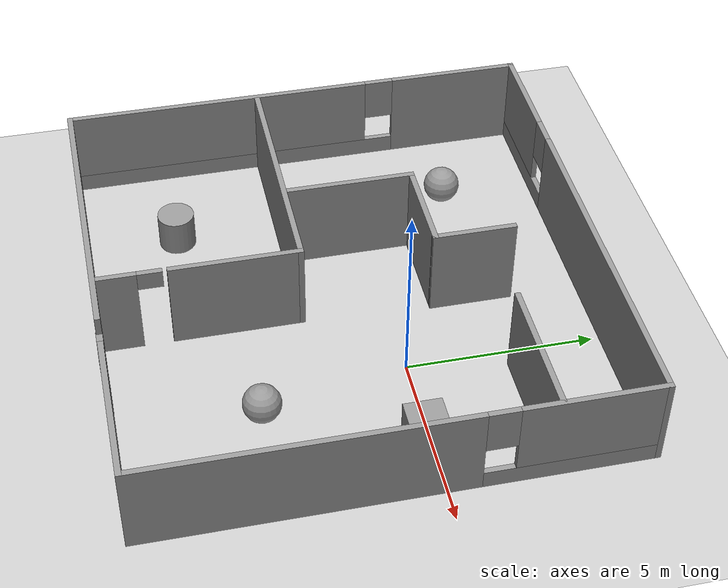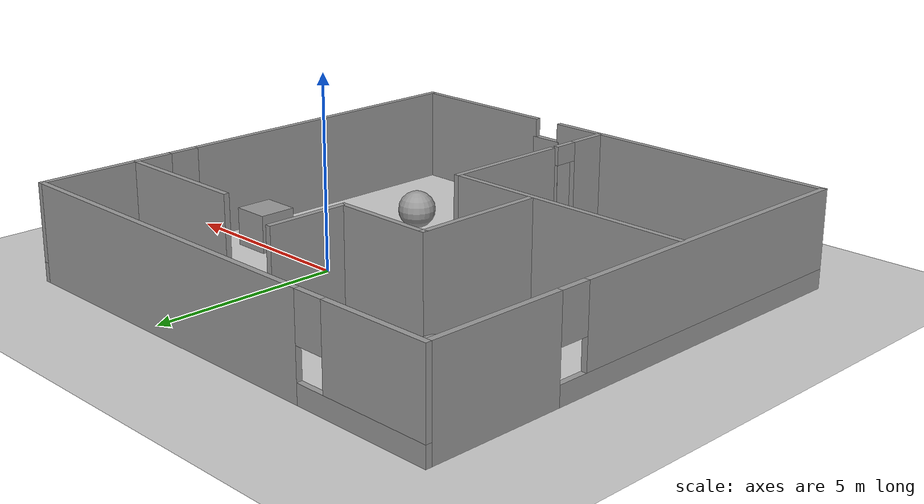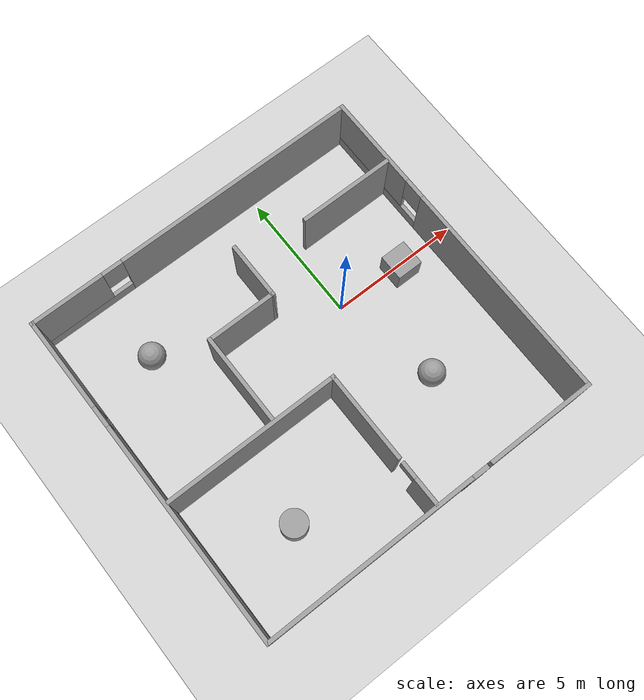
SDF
<sdf version="1.7">
 <world name="default">
  <light name="sun" type="directional">
   <pose>0 0 10 0 -0 0</pose>
   <diffuse>0.8 0.8 0.8 1</diffuse>
   <specular>0.2 0.2 0.2 1</specular>
   <attenuation>
    <range>1000</range>
    <constant>0.9</constant>
    <linear>0.01</linear>
    <quadratic>0.001</quadratic>
   </attenuation>
   <direction>-0.5 0.1 -0.9</direction>
   <spot><inner_angle>0</inner_angle><outer_angle>0</outer_angle><falloff>0</falloff></spot>
  </light>
  <model name="ground_plane">
   <static>1</static>
   <link name="link">
    <collision name="collision">
     <geometry><plane><normal>0 0 1</normal><size>100 100</size></plane></geometry>
     <surface>
      <contact><collide_bitmask>65535</collide_bitmask></contact>
      <friction><ode><mu>100</mu><mu2>50</mu2></ode></friction>
     </surface>
    </collision>
    <visual name="visual">
     <cast_shadows>0</cast_shadows>
     <geometry><plane><normal>0 0 1</normal><size>100 100</size></plane></geometry>
     <material>
      <script><uri>file://media/materials/scripts/gazebo.material</uri><name>Gazebo/Grey</name></script>
     </material>
    </visual>
   </link>
  </model>
  <gravity>0 0 -9.8</gravity>
  <magnetic_field>6e-06 2.3e-05 -4.2e-05</magnetic_field>
  <atmosphere type="adiabatic"/>
  <physics type="ode">
   <max_step_size>0.001</max_step_size>
   <real_time_factor>1</real_time_factor>
   <real_time_update_rate>1000</real_time_update_rate>
  </physics>
  <scene><ambient>0.4 0.4 0.4 1</ambient><background>0.7 0.7 0.7 1</background><shadows>1</shadows></scene>
  <spherical_coordinates>
   <surface_model>EARTH_WGS84</surface_model>
   <latitude_deg>0</latitude_deg>
   <longitude_deg>0</longitude_deg>
   <elevation>0</elevation>
   <heading_deg>0</heading_deg>
  </spherical_coordinates>
  <model name="simple_home">
   <pose>-2.42721 -1.16385 0 0 -0 0</pose>
   <link name="Door_0">
    <collision name="Door_0_Collision">
     <geometry><box><size>0.9 0.17 2</size></box></geometry>
     <pose>0 0 1 0 -0 0</pose>
    </collision>
    <visual name="Door_0_Visual">
     <pose>0 0 1 0 -0 0</pose>
     <geometry><box><size>0.9 0.17 2</size></box></geometry>
     <material>
      <script><uri>file://media/materials/scripts/gazebo.material</uri><name>Gazebo/Grey</name></script>
     </material>
    </visual>
    <pose>2.01601 -6.43038 0 0 -0 0</pose>
   </link>
   <link name="Wall_0">
    <collision name="Wall_0_Collision">
     <geometry><box><size>4.25 0.15 2.5</size></box></geometry>
     <pose>0 0 1.25 0 -0 0</pose>
    </collision>
    <visual name="Wall_0_Visual">
     <pose>0 0 1.25 0 -0 0</pose>
     <geometry><box><size>4.25 0.15 2.5</size></box></geometry>
     <material>
      <script><uri>file://media/materials/scripts/gazebo.material</uri><name>Gazebo/Grey</name></script>
      <ambient>1 1 1 1</ambient>
     </material>
     <meta><layer>0</layer></meta>
    </visual>
    <pose>4.5 -6.425 0 0 -0 0</pose>
   </link>
   <link name="Wall_10">
    <collision name="Wall_10_Collision">
     <geometry><box><size>3.5 0.15 2.5</size></box></geometry>
     <pose>0 0 1.25 0 -0 0</pose>
    </collision>
    <visual name="Wall_10_Visual">
     <pose>0 0 1.25 0 -0 0</pose>
     <geometry><box><size>3.5 0.15 2.5</size></box></geometry>
     <material>
      <script><uri>file://media/materials/scripts/gazebo.material</uri><name>Gazebo/Grey</name></script>
      <ambient>1 1 1 1</ambient>
     </material>
     <meta><layer>0</layer></meta>
    </visual>
    <pose>0.173196 -2.79346 0 0 -0 1.5708</pose>
   </link>
   <link name="Wall_11">
    <collision name="Wall_11_Collision">
     <geometry><box><size>6.75 0.15 2.5</size></box></geometry>
     <pose>0 0 1.25 0 -0 0</pose>
    </collision>
    <visual name="Wall_11_Visual">
     <pose>0 0 1.25 0 -0 0</pose>
     <geometry><box><size>6.75 0.15 2.5</size></box></geometry>
     <material>
      <script><uri>file://media/materials/scripts/gazebo.material</uri><name>Gazebo/Grey</name></script>
      <ambient>1 1 1 1</ambient>
     </material>
     <meta><layer>0</layer></meta>
    </visual>
    <pose>-3.1268 -1.11846 0 0 -0 3.14159</pose>
   </link>
   <link name="Wall_13">
    <collision name="Wall_13_Collision">
     <geometry><box><size>3.5 0.15 2.5</size></box></geometry>
     <pose>0 0 1.25 0 -0 0</pose>
    </collision>
    <visual name="Wall_13_Visual">
     <pose>0 0 1.25 0 -0 0</pose>
     <geometry><box><size>3.5 0.15 2.5</size></box></geometry>
     <material>
      <script><uri>file://media/materials/scripts/gazebo.material</uri><name>Gazebo/Grey</name></script>
      <ambient>1 1 1 1</ambient>
     </material>
     <meta><layer>0</layer></meta>
    </visual>
    <pose>-2.24343 0.693825 0 0 -0 1.5708</pose>
   </link>
   <link name="Wall_14">
    <collision name="Wall_14_Collision">
     <geometry><box><size>2.75 0.15 2.5</size></box></geometry>
     <pose>0 0 1.25 0 -0 0</pose>
    </collision>
    <visual name="Wall_14_Visual">
     <pose>0 0 1.25 0 -0 0</pose>
     <geometry><box><size>2.75 0.15 2.5</size></box></geometry>
     <material>
      <script><uri>file://media/materials/scripts/gazebo.material</uri><name>Gazebo/Grey</name></script>
      <ambient>1 1 1 1</ambient>
     </material>
     <meta><layer>0</layer></meta>
    </visual>
    <pose>-0.943432 2.36883 0 0 -0 0</pose>
   </link>
   <link name="Wall_15">
    <collision name="Wall_15_Collision">
     <geometry><box><size>2.25 0.15 2.5</size></box></geometry>
     <pose>0 0 1.25 0 -0 0</pose>
    </collision>
    <visual name="Wall_15_Visual">
     <pose>0 0 1.25 0 -0 0</pose>
     <geometry><box><size>2.25 0.15 2.5</size></box></geometry>
     <material>
      <script><uri>file://media/materials/scripts/gazebo.material</uri><name>Gazebo/Grey</name></script>
      <ambient>1 1 1 1</ambient>
     </material>
     <meta><layer>0</layer></meta>
    </visual>
    <pose>0.356568 3.41883 0 0 -0 1.5708</pose>
   </link>
   <link name="Wall_17">
    <collision name="Wall_17_Collision">
     <geometry><box><size>3.75 0.15 2.5</size></box></geometry>
     <pose>0 0 1.25 0 -0 0</pose>
    </collision>
    <visual name="Wall_17_Visual">
     <pose>0 0 1.25 0 -0 0</pose>
     <geometry><box><size>3.75 0.15 2.5</size></box></geometry>
     <material>
      <script><uri>file://media/materials/scripts/gazebo.material</uri><name>Gazebo/Grey</name></script>
      <ambient>1 1 1 1</ambient>
     </material>
     <meta><layer>0</layer></meta>
    </visual>
    <pose>4.69573 3.82149 0 0 -0 0</pose>
   </link>
   <link name="Wall_3">
    <pose>6.55 0 0 0 -0 1.5708</pose>
    <visual name="Wall_3_Visual_0">
     <pose>-2.24283 0 1.25 0 -0 0</pose>
     <geometry><box><size>8.51434 0.15 2.5</size></box></geometry>
     <material>
      <script><uri>file://media/materials/scripts/gazebo.material</uri><name>Gazebo/Grey</name></script>
      <ambient>1 1 1 1</ambient>
     </material>
     <meta><layer>0</layer></meta>
    </visual>
    <collision name="Wall_3_Collision_0">
     <geometry><box><size>8.51434 0.15 2.5</size></box></geometry>
     <pose>-2.24283 0 1.25 0 -0 0</pose>
    </collision>
    <visual name="Wall_3_Visual_1">
     <pose>4.25717 0 0.25 0 -0 0</pose>
     <geometry><box><size>4.48566 0.15 0.5</size></box></geometry>
     <material>
      <script><uri>file://media/materials/scripts/gazebo.material</uri><name>Gazebo/Grey</name></script>
      <ambient>1 1 1 1</ambient>
     </material>
     <meta><layer>0</layer></meta>
    </visual>
    <collision name="Wall_3_Collision_1">
     <geometry><box><size>4.48566 0.15 0.5</size></box></geometry>
     <pose>4.25717 0 0.25 0 -0 0</pose>
    </collision>
    <visual name="Wall_3_Visual_2">
     <pose>4.65717 0 1.5 0 -0 0</pose>
     <geometry><box><size>3.68566 0.15 2</size></box></geometry>
     <material>
      <script><uri>file://media/materials/scripts/gazebo.material</uri><name>Gazebo/Grey</name></script>
      <ambient>1 1 1 1</ambient>
     </material>
     <meta><layer>0</layer></meta>
    </visual>
    <collision name="Wall_3_Collision_2">
     <geometry><box><size>3.68566 0.15 2</size></box></geometry>
     <pose>4.65717 0 1.5 0 -0 0</pose>
    </collision>
    <visual name="Wall_3_Visual_3">
     <pose>2.41434 0 1.9 0 -0 0</pose>
     <geometry><box><size>0.8 0.15 1.2</size></box></geometry>
     <material>
      <script><uri>file://media/materials/scripts/gazebo.material</uri><name>Gazebo/Grey</name></script>
      <ambient>1 1 1 1</ambient>
     </material>
     <meta><layer>0</layer></meta>
    </visual>
    <collision name="Wall_3_Collision_3">
     <geometry><box><size>0.8 0.15 1.2</size></box></geometry>
     <pose>2.41434 0 1.9 0 -0 0</pose>
    </collision>
   </link>
   <link name="Wall_4">
    <pose>-0 6.425 0 0 -0 3.14159</pose>
    <visual name="Wall_4_Visual_0">
     <pose>-1.84016 0 1.25 0 -0 0</pose>
     <geometry><box><size>9.56968 0.15 2.5</size></box></geometry>
     <material>
      <script><uri>file://media/materials/scripts/gazebo.material</uri><name>Gazebo/Grey</name></script>
      <ambient>1 1 1 1</ambient>
     </material>
     <meta><layer>0</layer></meta>
    </visual>
    <collision name="Wall_4_Collision_0">
     <geometry><box><size>9.56968 0.15 2.5</size></box></geometry>
     <pose>-1.84016 0 1.25 0 -0 0</pose>
    </collision>
    <visual name="Wall_4_Visual_1">
     <pose>4.78484 0 0.25 0 -0 0</pose>
     <geometry><box><size>3.68032 0.15 0.5</size></box></geometry>
     <material>
      <script><uri>file://media/materials/scripts/gazebo.material</uri><name>Gazebo/Grey</name></script>
      <ambient>1 1 1 1</ambient>
     </material>
     <meta><layer>0</layer></meta>
    </visual>
    <collision name="Wall_4_Collision_1">
     <geometry><box><size>3.68032 0.15 0.5</size></box></geometry>
     <pose>4.78484 0 0.25 0 -0 0</pose>
    </collision>
    <visual name="Wall_4_Visual_2">
     <pose>5.18484 0 1.5 0 -0 0</pose>
     <geometry><box><size>2.88032 0.15 2</size></box></geometry>
     <material>
      <script><uri>file://media/materials/scripts/gazebo.material</uri><name>Gazebo/Grey</name></script>
      <ambient>1 1 1 1</ambient>
     </material>
     <meta><layer>0</layer></meta>
    </visual>
    <collision name="Wall_4_Collision_2">
     <geometry><box><size>2.88032 0.15 2</size></box></geometry>
     <pose>5.18484 0 1.5 0 -0 0</pose>
    </collision>
    <visual name="Wall_4_Visual_3">
     <pose>3.34468 0 1.9 0 -0 0</pose>
     <geometry><box><size>0.8 0.15 1.2</size></box></geometry>
     <material>
      <script><uri>file://media/materials/scripts/gazebo.material</uri><name>Gazebo/Grey</name></script>
      <ambient>1 1 1 1</ambient>
     </material>
     <meta><layer>0</layer></meta>
    </visual>
    <collision name="Wall_4_Collision_3">
     <geometry><box><size>0.8 0.15 1.2</size></box></geometry>
     <pose>3.34468 0 1.9 0 -0 0</pose>
    </collision>
   </link>
   <link name="Wall_5">
    <pose>-6.55 0 0 0 -0 -1.5708</pose>
    <visual name="Wall_5_Visual_0">
     <pose>-4.67246 0 1.25 0 -0 0</pose>
     <geometry><box><size>3.65507 0.15 2.5</size></box></geometry>
     <material>
      <script><uri>file://media/materials/scripts/gazebo.material</uri><name>Gazebo/Grey</name></script>
      <ambient>1 1 1 1</ambient>
     </material>
     <meta><layer>0</layer></meta>
    </visual>
    <collision name="Wall_5_Collision_0">
     <geometry><box><size>3.65507 0.15 2.5</size></box></geometry>
     <pose>-4.67246 0 1.25 0 -0 0</pose>
    </collision>
    <visual name="Wall_5_Visual_1">
     <pose>1.82753 0 0.25 0 -0 0</pose>
     <geometry><box><size>9.34493 0.15 0.5</size></box></geometry>
     <material>
      <script><uri>file://media/materials/scripts/gazebo.material</uri><name>Gazebo/Grey</name></script>
      <ambient>1 1 1 1</ambient>
     </material>
     <meta><layer>0</layer></meta>
    </visual>
    <collision name="Wall_5_Collision_1">
     <geometry><box><size>9.34493 0.15 0.5</size></box></geometry>
     <pose>1.82753 0 0.25 0 -0 0</pose>
    </collision>
    <visual name="Wall_5_Visual_2">
     <pose>2.22754 0 1.5 0 -0 0</pose>
     <geometry><box><size>8.54493 0.15 2</size></box></geometry>
     <material>
      <script><uri>file://media/materials/scripts/gazebo.material</uri><name>Gazebo/Grey</name></script>
      <ambient>1 1 1 1</ambient>
     </material>
     <meta><layer>0</layer></meta>
    </visual>
    <collision name="Wall_5_Collision_2">
     <geometry><box><size>8.54493 0.15 2</size></box></geometry>
     <pose>2.22754 0 1.5 0 -0 0</pose>
    </collision>
    <visual name="Wall_5_Visual_3">
     <pose>-2.44493 0 1.9 0 -0 0</pose>
     <geometry><box><size>0.8 0.15 1.2</size></box></geometry>
     <material>
      <script><uri>file://media/materials/scripts/gazebo.material</uri><name>Gazebo/Grey</name></script>
      <ambient>1 1 1 1</ambient>
     </material>
     <meta><layer>0</layer></meta>
    </visual>
    <collision name="Wall_5_Collision_3">
     <geometry><box><size>0.8 0.15 1.2</size></box></geometry>
     <pose>-2.44493 0 1.9 0 -0 0</pose>
    </collision>
   </link>
   <link name="Wall_6">
    <collision name="Wall_6_Collision">
     <geometry><box><size>8.25 0.15 2.5</size></box></geometry>
     <pose>0 0 1.25 0 -0 0</pose>
    </collision>
    <visual name="Wall_6_Visual">
     <pose>0 0 1.25 0 -0 0</pose>
     <geometry><box><size>8.25 0.15 2.5</size></box></geometry>
     <material>
      <script><uri>file://media/materials/scripts/gazebo.material</uri><name>Gazebo/Grey</name></script>
      <ambient>1 1 1 1</ambient>
     </material>
     <meta><layer>0</layer></meta>
    </visual>
    <pose>-2.5 -6.425 0 0 -0 0</pose>
   </link>
   <link name="Wall_8">
    <pose>0.173196 -5.53446 0 0 -0 1.5708</pose>
    <visual name="Wall_8_Visual_0">
     <pose>-0.328335 0 1.25 0 -0 0</pose>
     <geometry><box><size>1.09333 0.15 2.5</size></box></geometry>
     <material>
      <script><uri>file://media/materials/scripts/gazebo.material</uri><name>Gazebo/Grey</name></script>
      <ambient>1 1 1 1</ambient>
     </material>
     <meta><layer>0</layer></meta>
    </visual>
    <collision name="Wall_8_Collision_0">
     <geometry><box><size>1.09333 0.15 2.5</size></box></geometry>
     <pose>-0.328335 0 1.25 0 -0 0</pose>
    </collision>
    <visual name="Wall_8_Visual_1">
     <pose>0.546665 0 2.25 0 -0 0</pose>
     <geometry><box><size>0.656669 0.15 0.5</size></box></geometry>
     <material>
      <script><uri>file://media/materials/scripts/gazebo.material</uri><name>Gazebo/Grey</name></script>
      <ambient>1 1 1 1</ambient>
     </material>
     <meta><layer>0</layer></meta>
    </visual>
    <collision name="Wall_8_Collision_1">
     <geometry><box><size>0.656669 0.15 0.5</size></box></geometry>
     <pose>0.546665 0 2.25 0 -0 0</pose>
    </collision>
   </link>
   <static>1</static>
  </model>
  <model name="unit_sphere">
   <pose>0.906846 -3.8958 0.5 0 -0 0</pose>
   <link name="link">
    <inertial>
     <mass>1</mass>
     <inertia><ixx>0.1</ixx><ixy>0</ixy><ixz>0</ixz><iyy>0.1</iyy><iyz>0</iyz><izz>0.1</izz></inertia>
    </inertial>
    <collision name="collision"><geometry><sphere><radius>0.5</radius></sphere></geometry></collision>
    <visual name="visual">
     <geometry><sphere><radius>0.5</radius></sphere></geometry>
     <material>
      <script><name>Gazebo/Grey</name><uri>file://media/materials/scripts/gazebo.material</uri></script>
     </material>
    </visual>
   </link>
  </model>
  <model name="unit_sphere_0">
   <pose>-6.41066 2.58084 0.5 0 -0 0</pose>
   <link name="link">
    <inertial>
     <mass>1</mass>
     <inertia><ixx>0.1</ixx><ixy>0</ixy><ixz>0</ixz><iyy>0.1</iyy><iyz>0</iyz><izz>0.1</izz></inertia>
    </inertial>
    <collision name="collision"><geometry><sphere><radius>0.5</radius></sphere></geometry></collision>
    <visual name="visual">
     <geometry><sphere><radius>0.5</radius></sphere></geometry>
     <material>
      <script><name>Gazebo/Grey</name><uri>file://media/materials/scripts/gazebo.material</uri></script>
     </material>
    </visual>
   </link>
  </model>
  <model name="unit_cylinder">
   <pose>-6.06969 -5.1003 0.499993 -3e-06 -4e-06 -0</pose>
   <link name="link">
    <inertial>
     <mass>1</mass>
     <inertia><ixx>0.145833</ixx><ixy>0</ixy><ixz>0</ixz><iyy>0.145833</iyy><iyz>0</iyz><izz>0.125</izz></inertia>
    </inertial>
    <collision name="collision">
     <geometry><cylinder><radius>0.5</radius><length>1</length></cylinder></geometry>
    </collision>
    <visual name="visual">
     <geometry><cylinder><radius>0.5</radius><length>1</length></cylinder></geometry>
     <material>
      <script><name>Gazebo/Grey</name><uri>file://media/materials/scripts/gazebo.material</uri></script>
     </material>
    </visual>
   </link>
  </model>
  <model name="unit_box">
   <pose>2.58607 -0.132421 0.5 0 -0 0</pose>
   <link name="link">
    <inertial>
     <mass>1</mass>
     <inertia>
      <ixx>0.166667</ixx>
      <ixy>0</ixy>
      <ixz>0</ixz>
      <iyy>0.166667</iyy>
      <iyz>0</iyz>
      <izz>0.166667</izz>
     </inertia>
    </inertial>
    <collision name="collision"><geometry><box><size>1 1 1</size></box></geometry></collision>
    <visual name="visual">
     <geometry><box><size>1 1 1</size></box></geometry>
     <material>
      <script><name>Gazebo/Grey</name><uri>file://media/materials/scripts/gazebo.material</uri></script>
     </material>
    </visual>
   </link>
  </model>
 </world>
</sdf>
